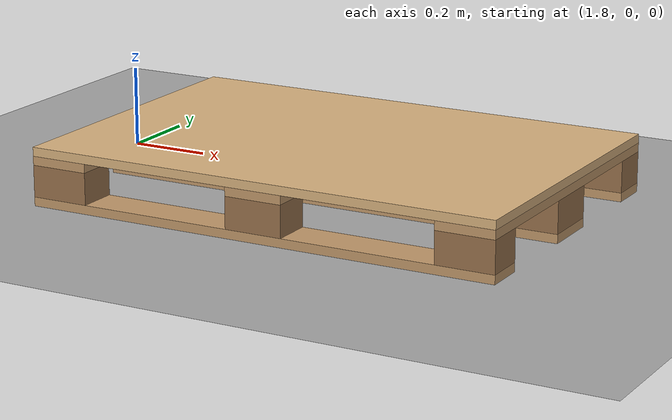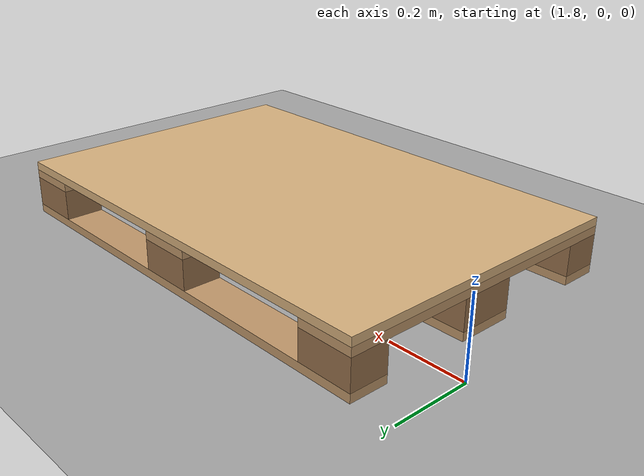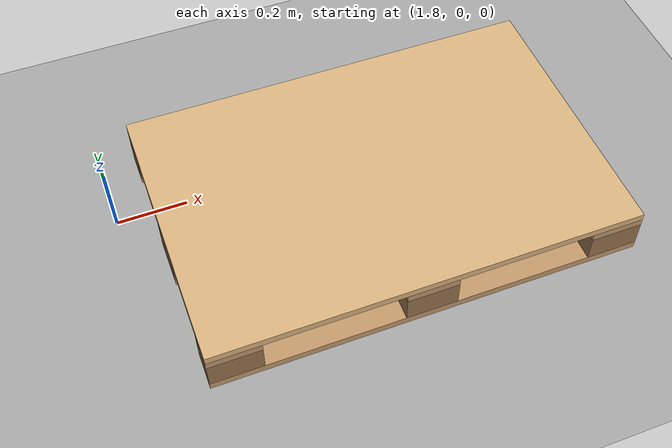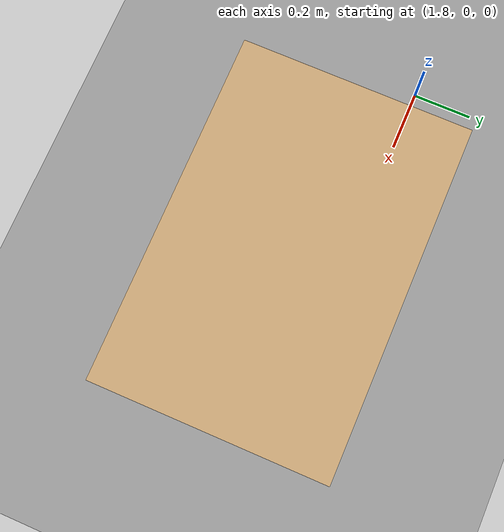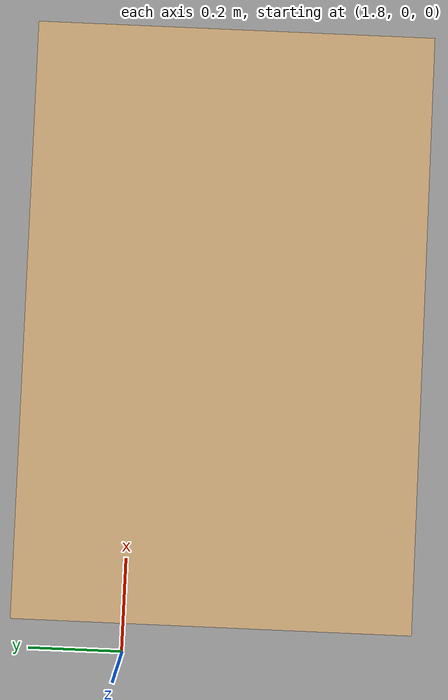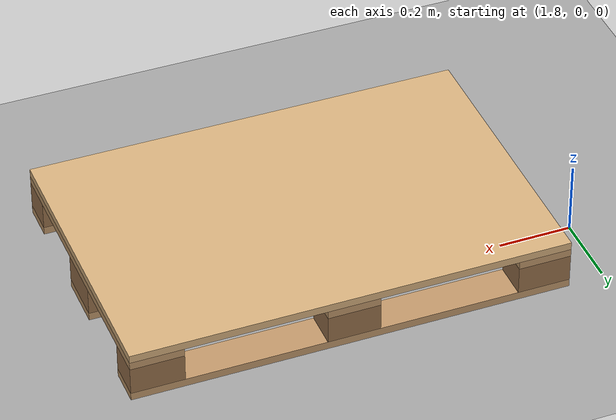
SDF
<?xml version="1.0" ?>
<sdf version="1.9">
  <world name="warehouse">
    <physics name="1ms" type="ignored">
      <max_step_size>0.001</max_step_size>
      <real_time_factor>1.0</real_time_factor>
    </physics>

    <plugin filename="gz-sim-physics-system" name="gz::sim::systems::Physics"/>
    <plugin filename="gz-sim-user-commands-system" name="gz::sim::systems::UserCommands"/>
    <plugin filename="gz-sim-scene-broadcaster-system" name="gz::sim::systems::SceneBroadcaster"/>
    <plugin filename="gz-sim-contact-system" name="gz::sim::systems::Contact"/>

    <gravity>0 0 -9.81</gravity>

    <scene>
      <ambient>0.6 0.6 0.6 1</ambient>
      <background>0.8 0.8 0.85 1</background>
      <shadows>true</shadows>
    </scene>

    <light type="directional" name="sun">
      <cast_shadows>true</cast_shadows>
      <pose>0 0 10 0 0 0</pose>
      <diffuse>0.9 0.9 0.9 1</diffuse>
      <direction>-0.5 0.1 -0.9</direction>
    </light>

    <!-- Пол -->
    <model name="ground_plane">
      <static>true</static>
      <link name="link">
        <collision name="c"><geometry><plane><normal>0 0 1</normal><size>30 30</size></plane></geometry></collision>
        <visual name="v"><geometry><plane><normal>0 0 1</normal><size>30 30</size></plane></geometry>
          <material><ambient>0.6 0.6 0.6 1</ambient><diffuse>0.65 0.65 0.65 1</diffuse></material>
        </visual>
      </link>
    </model>

    <!-- ================= СТАНДАРТНЫЙ ЕВРОПОДДОН 1200 x 800 x 144 мм =================
         Смещение Y = -0.18625 m выравнивает правый проём европоддона строго по оси Y = 0.0 -->
    <model name="euro_pallet">
      <pose>2.5 -0.18625 0 0 0 0</pose>
      <static>false</static>
      <link name="pallet_link">
        <inertial>
          <pose>0 0 0.072 0 0 0</pose>
          <mass>25.0</mass>
          <inertia>
            <ixx>1.376</ixx><ixy>0</ixy><ixz>0</ixz>
            <iyy>3.043</iyy><iyz>0</iyz><izz>4.333</izz>
          </inertia>
        </inertial>

        <!-- 3 нижние опорные доски (толщина 22 мм) -->
        <collision name="bb_l"><pose>0 0.35 0.011 0 0 0</pose><geometry><box><size>1.2 0.1 0.022</size></box></geometry></collision>
        <collision name="bb_c"><pose>0 0.0 0.011 0 0 0</pose><geometry><box><size>1.2 0.145 0.022</size></box></geometry></collision>
        <collision name="bb_r"><pose>0 -0.35 0.011 0 0 0</pose><geometry><box><size>1.2 0.1 0.022</size></box></geometry></collision>
        <visual name="bb_l_v"><pose>0 0.35 0.011 0 0 0</pose><geometry><box><size>1.2 0.1 0.022</size></box></geometry><material><diffuse>0.76 0.6 0.42 1</diffuse></material></visual>
        <visual name="bb_c_v"><pose>0 0.0 0.011 0 0 0</pose><geometry><box><size>1.2 0.145 0.022</size></box></geometry><material><diffuse>0.76 0.6 0.42 1</diffuse></material></visual>
        <visual name="bb_r_v"><pose>0 -0.35 0.011 0 0 0</pose><geometry><box><size>1.2 0.1 0.022</size></box></geometry><material><diffuse>0.76 0.6 0.42 1</diffuse></material></visual>

        <!-- 9 опорных шашек (высота 78 мм: от 22 мм до 100 мм) -->
        <!-- Левый ряд -->
        <collision name="b1"><pose>0.5275 0.35 0.061 0 0 0</pose><geometry><box><size>0.145 0.1 0.078</size></box></geometry></collision>
        <collision name="b2"><pose>0 0.35 0.061 0 0 0</pose><geometry><box><size>0.145 0.1 0.078</size></box></geometry></collision>
        <collision name="b3"><pose>-0.5275 0.35 0.061 0 0 0</pose><geometry><box><size>0.145 0.1 0.078</size></box></geometry></collision>
        <!-- Центральный ряд -->
        <collision name="b4"><pose>0.5275 0 0.061 0 0 0</pose><geometry><box><size>0.145 0.145 0.078</size></box></geometry></collision>
        <collision name="b5"><pose>0 0 0.061 0 0 0</pose><geometry><box><size>0.145 0.145 0.078</size></box></geometry></collision>
        <collision name="b6"><pose>-0.5275 0 0.061 0 0 0</pose><geometry><box><size>0.145 0.145 0.078</size></box></geometry></collision>
        <!-- Правый ряд -->
        <collision name="b7"><pose>0.5275 -0.35 0.061 0 0 0</pose><geometry><box><size>0.145 0.1 0.078</size></box></geometry></collision>
        <collision name="b8"><pose>0 -0.35 0.061 0 0 0</pose><geometry><box><size>0.145 0.1 0.078</size></box></geometry></collision>
        <collision name="b9"><pose>-0.5275 -0.35 0.061 0 0 0</pose><geometry><box><size>0.145 0.1 0.078</size></box></geometry></collision>

        <!-- Визуализация шашек -->
        <visual name="b1v"><pose>0.5275 0.35 0.061 0 0 0</pose><geometry><box><size>0.145 0.1 0.078</size></box></geometry><material><diffuse>0.6 0.45 0.3 1</diffuse></material></visual>
        <visual name="b2v"><pose>0 0.35 0.061 0 0 0</pose><geometry><box><size>0.145 0.1 0.078</size></box></geometry><material><diffuse>0.6 0.45 0.3 1</diffuse></material></visual>
        <visual name="b3v"><pose>-0.5275 0.35 0.061 0 0 0</pose><geometry><box><size>0.145 0.1 0.078</size></box></geometry><material><diffuse>0.6 0.45 0.3 1</diffuse></material></visual>
        <visual name="b4v"><pose>0.5275 0 0.061 0 0 0</pose><geometry><box><size>0.145 0.145 0.078</size></box></geometry><material><diffuse>0.6 0.45 0.3 1</diffuse></material></visual>
        <visual name="b5v"><pose>0 0 0.061 0 0 0</pose><geometry><box><size>0.145 0.145 0.078</size></box></geometry><material><diffuse>0.6 0.45 0.3 1</diffuse></material></visual>
        <visual name="b6v"><pose>-0.5275 0 0.061 0 0 0</pose><geometry><box><size>0.145 0.145 0.078</size></box></geometry><material><diffuse>0.6 0.45 0.3 1</diffuse></material></visual>
        <visual name="b7v"><pose>0.5275 -0.35 0.061 0 0 0</pose><geometry><box><size>0.145 0.1 0.078</size></box></geometry><material><diffuse>0.6 0.45 0.3 1</diffuse></material></visual>
        <visual name="b8v"><pose>0 -0.35 0.061 0 0 0</pose><geometry><box><size>0.145 0.1 0.078</size></box></geometry><material><diffuse>0.6 0.45 0.3 1</diffuse></material></visual>
        <visual name="b9v"><pose>-0.5275 -0.35 0.061 0 0 0</pose><geometry><box><size>0.145 0.1 0.078</size></box></geometry><material><diffuse>0.6 0.45 0.3 1</diffuse></material></visual>

        <!-- 3 поперечные доски (толщина 22 мм: от 100 мм до 122 мм) -->
        <collision name="s1"><pose>0.5275 0 0.111 0 0 0</pose><geometry><box><size>0.145 0.8 0.022</size></box></geometry></collision>
        <collision name="s2"><pose>0 0 0.111 0 0 0</pose><geometry><box><size>0.145 0.8 0.022</size></box></geometry></collision>
        <collision name="s3"><pose>-0.5275 0 0.111 0 0 0</pose><geometry><box><size>0.145 0.8 0.022</size></box></geometry></collision>
        <visual name="s1v"><pose>0.5275 0 0.111 0 0 0</pose><geometry><box><size>0.145 0.8 0.022</size></box></geometry><material><diffuse>0.76 0.6 0.42 1</diffuse></material></visual>
        <visual name="s2v"><pose>0 0 0.111 0 0 0</pose><geometry><box><size>0.145 0.8 0.022</size></box></geometry><material><diffuse>0.76 0.6 0.42 1</diffuse></material></visual>
        <visual name="s3v"><pose>-0.5275 0 0.111 0 0 0</pose><geometry><box><size>0.145 0.8 0.022</size></box></geometry><material><diffuse>0.76 0.6 0.42 1</diffuse></material></visual>

        <!-- Верхний сплошной настил (толщина 22 мм: от 122 мм до 144 мм) -->
        <collision name="top"><pose>0 0 0.133 0 0 0</pose><geometry><box><size>1.2 0.8 0.022</size></box></geometry></collision>
        <visual name="top_v"><pose>0 0 0.133 0 0 0</pose><geometry><box><size>1.2 0.8 0.022</size></box></geometry><material><diffuse>0.85 0.7 0.5 1</diffuse></material></visual>
      </link>
    </model>
  </world>
</sdf>
